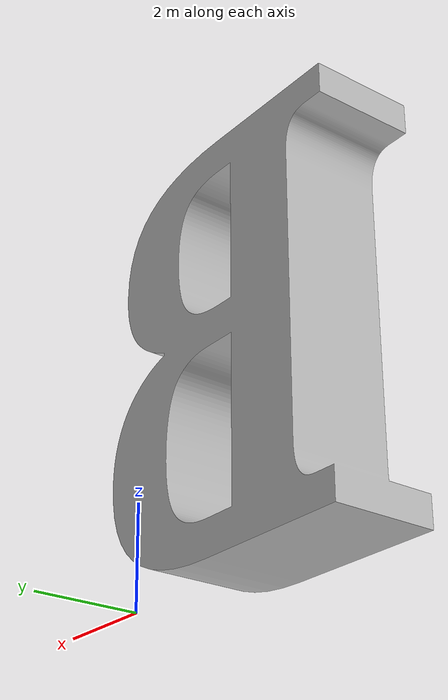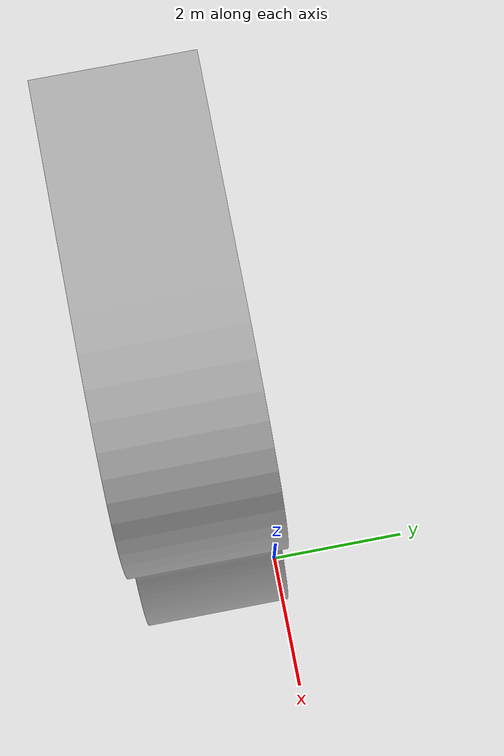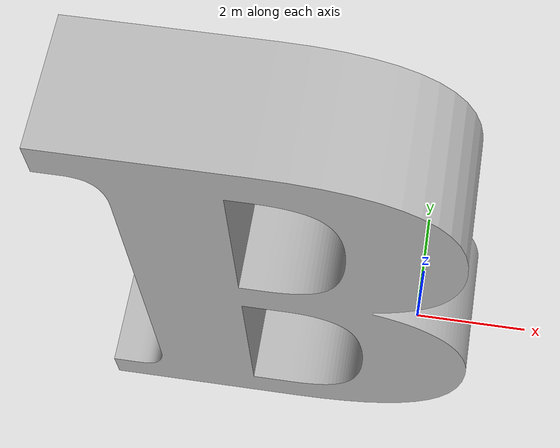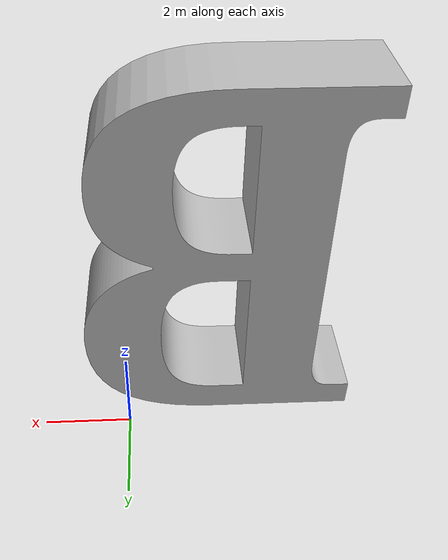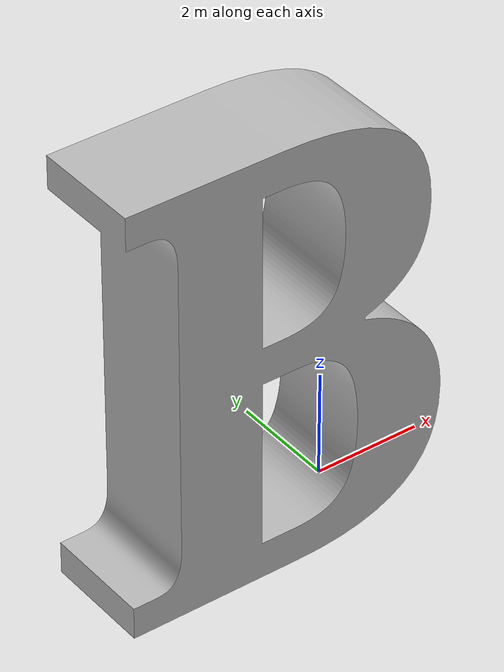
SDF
<sdf version='1.5'>
  <model name='text_B'>
    <link name='B'>
      <collision name='B_inertia_collision'>
        <pose frame=''>0 0 6.05 1.570796 -0 0</pose>
        <geometry>
          <mesh>
            <scale>0.2 0.2 0.2</scale>
            <uri>model://text_description/meshes/B.stl</uri>
          </mesh>
        </geometry>
        <surface>
          <contact>
            <ode>
              <min_depth>0.001</min_depth>
              <max_vel>0</max_vel>
            </ode>
          </contact>
          <friction>
            <ode/>
          </friction>
        </surface>
      </collision>
      <visual name='B_inertia_visual'>
        <pose frame=''>0 0 6.05 1.570796 -0 0</pose>
        <geometry>
          <mesh>
            <scale>0.2 0.2 0.2</scale>
            <uri>model://text_description/meshes/B.stl</uri>
          </mesh>
        </geometry>
      </visual>
      <kinematic>1</kinematic>
      <velocity_decay/>
    </link>
  </model>
</sdf>
